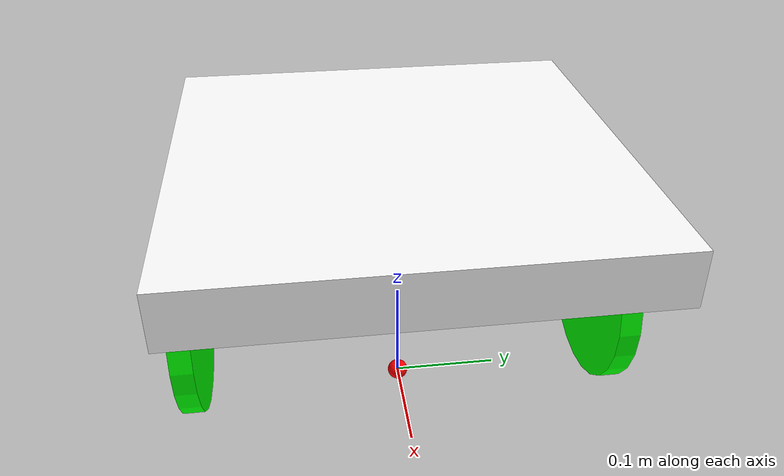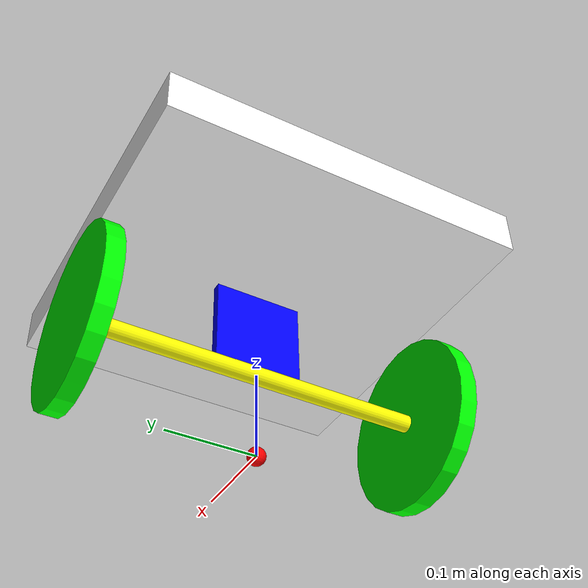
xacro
<?xml version="1.0"?>

<robot name="balancing_robot"
    xmlns:xacro="http://ros.org/wiki/xacro">

    <xacro:property name="pi" value="3.1415926"/>
    <xacro:property name="base_link_length" value="0.4"/>
    <xacro:property name="base_link_radius" value="0.01"/>
    <xacro:property name="wheel_radius" value="0.1"/>
    <xacro:property name="wheel_width" value="0.02"/>
    <xacro:property name="support_x" value="0.01"/>
    <xacro:property name="support_y" value="0.1"/>
    <xacro:property name="support_z" value="0.13"/>
    <xacro:property name="UAV_x" value="0.4"/>
    <xacro:property name="UAV_y" value="0.4"/>
    <xacro:property name="UAV_z" value="0.05"/>

    <material name="red">
        <color rgba="1.0 0.0 0.0 1.0"/>
    </material>
    <material name="green">
        <color rgba="0.0 1.0 0.0 1.0"/>
    </material>
    <material name="blue">
        <color rgba="0.0 0.0 1.0 1.0"/>
    </material>
    <material name="yellow">
        <color rgba="1.0 1.0 0.0 1.0"/>
    </material>
    <material name="cyan">
        <color rgba="0.0 1.0 1.0 1.0"/>
    </material>
    <material name="orange">
        <color rgba="1.0 0.5 0.0 1.0"/>
    </material>
    <material name="purple">
        <color rgba="0.5 0.0 0.5 1.0"/>
    </material>
    <material name="white">
        <color rgba="1 1 1 1.0"/>
    </material>

    <!-- Virtual linkage, as specifying inertia on the base_link is not supported -->
    <link name="dummy_link">
        <visual>
            <geometry>
                <sphere radius="0.01"/>
            </geometry>
            <!-- 这里是rviz显示的颜色 -->
            <material name="red"/>
        </visual>
    </link>
    <gazebo reference="dummy_link">
        <material>Gazebo/Red</material>
    </gazebo>

    <link name="base_link">
        <visual>
            <geometry>
                <cylinder radius="${base_link_radius}" length="${base_link_length}"/>
            </geometry>
            <origin xyz="0 0 0" rpy="${pi/2} 0 0"/>
            <material name="yellow"/>
        </visual>
        <collision>
            <geometry>
                <cylinder radius="${base_link_radius}" length="${base_link_length}"/>
            </geometry>
            <origin xyz="0 0 0" rpy="${pi/2} 0 0"/>
        </collision>
        <inertial>
            <mass value="0.1"/>
            <inertia ixx="0.001336" ixy="0.0" ixz="0.0" iyy="0.001336" iyz="0.0" izz="0.000005"/>
        </inertial>
    </link>

    <gazebo reference="base_link">
        <material>Gazebo/Yellow</material>
    </gazebo>

    <joint name="dummy_to_base" type="fixed">
        <parent link="dummy_link"/>
        <child link="base_link"/>
        <origin xyz="0 0 ${wheel_radius}" rpy="0 0 0" />
    </joint>

    <xacro:macro name="wheel_func" params="direc pos">
        <link name="${pos}_wheel">
            <visual>
                <geometry>
                    <cylinder radius="${wheel_radius}" length="${wheel_width}"/>
                </geometry>
                <origin xyz="0 0 0" rpy="${pi/2} 0 0"/>
                <material name="green"/>
            </visual>
            <collision>
                <geometry>
                    <cylinder radius="${wheel_radius}" length="${wheel_width}"/>
                </geometry>
                <origin xyz="0 0 0" rpy="${pi/2} 0 0"/>
            </collision>
            <inertial>
                <mass value="0.5"/>
                <inertia ixx="0.00127" ixy="0.0" ixz="0.0" iyy="0.00127" iyz="0.0" izz="0.0025"/>
            </inertial>
        </link>

        <joint name="base_to_${pos}_wheel" type="continuous">
            <parent link="base_link"/>
            <child link="${pos}_wheel"/>
            <origin xyz="0 ${direc * base_link_length/2} 0" rpy="0 0 0"/>
            <axis xyz="0 1 0"/>
        </joint>

        <gazebo reference="${pos}_wheel">
            <mu1 value="0.3"/>
            <mu2 value="0.5"/>
            <material>Gazebo/Green</material>
        </gazebo>

        <transmission name="${pos}_wheel_trans">
            <type>transmission_interface/SimpleTransmission</type>
            <joint name="base_to_${pos}_wheel">
                <hardwareInterface>hardware_interface/EffortJointInterface</hardwareInterface>
            </joint>
            <actuator name="${pos}_wheel_motor">
                <mechanicalReduction>1.0</mechanicalReduction>
            </actuator>
        </transmission>
    </xacro:macro>

    <xacro:wheel_func direc="1" pos="left"/>
    <xacro:wheel_func direc="-1" pos="right"/>

    <link name="support">
        <visual>
            <geometry>
                <box size="${support_x} ${support_y} ${support_z}"/>
            </geometry>
            <origin xyz="0 0 0"/>
            <material name="blue"/>
        </visual>
        <collision>
            <geometry>
                <box size="${support_x} ${support_y} ${support_z}"/>
            </geometry>
            <origin xyz="0 0 0"/>
        </collision>
        <inertial>
            <mass value="0.1"/>
            <inertia ixx="0.00083" ixy="0.0" ixz="0.0" iyy="0.00075" iyz="0.0" izz="0.00008"/>
        </inertial>
    </link>

    <gazebo reference="support">
        <material>Gazebo/Blue</material>
    </gazebo>

    <joint name="base_to_support" type="fixed">
        <parent link="base_link"/>
        <child link="support"/>
        <origin xyz="0 0 ${support_z/2}" rpy="0 0 0"/>
    </joint>

    <link name="UAV">
        <visual name="">
            <geometry>
                <box size="${UAV_x} ${UAV_y} ${UAV_z}"/>
            </geometry>
            <origin xyz="0 0 0" rpy="0 0 0"/>
            <material name="white"/>
        </visual>
        <collision>
            <geometry>
                <box size="${UAV_x} ${UAV_y} ${UAV_z}"/>
            </geometry>
            <origin xyz="0 0 0" rpy="0 0 0"/>
        </collision>
        <inertial>
            <mass value="4"/>
            <inertia ixx="0.05417" ixy="0.0" ixz="0.0" iyy="0.05417" iyz="0.0" izz="0.10667"/>
        </inertial>
    </link>
    <gazebo reference="UAV">
        <material>Gazebo/White</material>
    </gazebo>

    <joint name="UAV_to_support" type="fixed">
        <parent link="support"/>
        <child link="UAV"/>
        <origin xyz="0 0 ${support_z/2}" rpy="0 0 0"/>
    </joint>

    <gazebo>
        <plugin name="gazebo_ros_control" filename="libgazebo_ros_control.so">
            <robotNamespace>/</robotNamespace>
        </plugin>
    </gazebo>

    <gazebo reference="support">
        <gravity>true</gravity>
        <sensor name="imu_sensor" type="imu">
            <always_on>true</always_on>
            <update_rate>50</update_rate>
            <visualize>true</visualize>
            <topic>__default_topic__</topic>
            <plugin filename="libgazebo_ros_imu_sensor.so" name="imu_plugin">
                <topicName>/imu/data</topicName>
                <updateRateHZ>50.0</updateRateHZ>
                <gaussianNoise>0</gaussianNoise>
                <xyzOffset>0 0 0</xyzOffset>
                <rpyOffset>0 0 0</rpyOffset>
                <frameName>imu_link</frameName>
            </plugin>
            <pose>1 0 0 0 0 0</pose>
        </sensor>
    </gazebo>

</robot>
